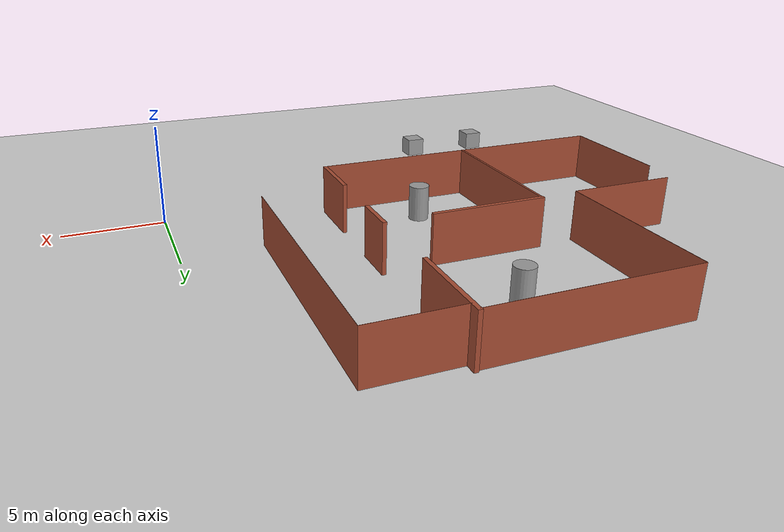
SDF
<sdf version="1.6">
 <world name="default">
  <model name="ground_plane">
   <static>1</static>
   <link name="link">
    <collision name="collision">
     <geometry><plane><normal>0 0 1</normal><size>100 100</size></plane></geometry>
     <surface><friction><ode><mu>100</mu><mu2>50</mu2></ode></friction></surface>
    </collision>
    <visual name="visual">
     <cast_shadows>0</cast_shadows>
     <geometry><plane><normal>0 0 1</normal><size>100 100</size></plane></geometry>
     <material>
      <script><uri>file://media/materials/scripts/gazebo.material</uri><name>Gazebo/Grey</name></script>
     </material>
    </visual>
   </link>
  </model>
  <model name="ANPL_Lab_Extended_1_0">
   <link name="Wall_165">
    <pose>-9.925 -4.975 0 0 -0 1.5708</pose>
    <visual name="Wall_165_Visual">
     <pose>0 0 1.25 0 -0 0</pose>
     <geometry><box><size>5.86 0.01 2.5</size></box></geometry>
     <material>
      <script><uri>file://media/materials/scripts/gazebo.material</uri><name>Gazebo/Bricks</name></script>
      <ambient>0.435294 0.796078 0.67451 1</ambient>
      <diffuse>1 1 1 1</diffuse>
      <specular>0.2 0.2 0.2 1</specular>
      <emissive>0 0 0 1</emissive>
     </material>
    </visual>
    <collision name="Wall_165_Collision">
     <pose>0 0 1.25 0 -0 0</pose>
     <geometry><box><size>5.86 0.01 2.5</size></box></geometry>
     <surface>
      <friction>
       <ode><mu>1</mu><mu2>1</mu2><fdir1>0 0 0</fdir1><slip1>0</slip1><slip2>0</slip2></ode>
       <torsional>
        <coefficient>1</coefficient>
        <patch_radius>0</patch_radius>
        <surface_radius>0</surface_radius>
        <use_patch_radius>1</use_patch_radius>
        <ode><slip>0</slip></ode>
       </torsional>
      </friction>
      <bounce><restitution_coefficient>0</restitution_coefficient><threshold>1e+06</threshold></bounce>
      <contact>
       <collide_without_contact>0</collide_without_contact>
       <collide_without_contact_bitmask>1</collide_without_contact_bitmask>
       <collide_bitmask>1</collide_bitmask>
       <ode>
        <soft_cfm>0</soft_cfm>
        <soft_erp>0.2</soft_erp>
        <kp>1e+13</kp>
        <kd>1</kd>
        <max_vel>0.01</max_vel>
        <min_depth>0</min_depth>
       </ode>
       <bullet>
        <split_impulse>1</split_impulse>
        <split_impulse_penetration_threshold>-0.01</split_impulse_penetration_threshold>
        <soft_cfm>0</soft_cfm>
        <soft_erp>0.2</soft_erp>
        <kp>1e+13</kp>
        <kd>1</kd>
       </bullet>
      </contact>
     </surface>
    </collision>
   </link>
   <link name="Wall_171">
    <pose>-6.8125 -0.3 0 0 -0 0</pose>
    <visual name="Wall_171_Visual">
     <pose>0 0 1.25 0 -0 0</pose>
     <geometry><box><size>5.435 0.01 2.5</size></box></geometry>
     <material>
      <script><uri>file://media/materials/scripts/gazebo.material</uri><name>Gazebo/Bricks</name></script>
      <ambient>0.435294 0.796078 0.67451 1</ambient>
      <diffuse>1 1 1 1</diffuse>
      <specular>0.2 0.2 0.2 1</specular>
      <emissive>0 0 0 1</emissive>
     </material>
    </visual>
    <collision name="Wall_171_Collision">
     <pose>0 0 1.25 0 -0 0</pose>
     <geometry><box><size>5.435 0.01 2.5</size></box></geometry>
     <surface>
      <friction>
       <ode><mu>1</mu><mu2>1</mu2><fdir1>0 0 0</fdir1><slip1>0</slip1><slip2>0</slip2></ode>
       <torsional>
        <coefficient>1</coefficient>
        <patch_radius>0</patch_radius>
        <surface_radius>0</surface_radius>
        <use_patch_radius>1</use_patch_radius>
        <ode><slip>0</slip></ode>
       </torsional>
      </friction>
      <bounce><restitution_coefficient>0</restitution_coefficient><threshold>1e+06</threshold></bounce>
      <contact>
       <collide_without_contact>0</collide_without_contact>
       <collide_without_contact_bitmask>1</collide_without_contact_bitmask>
       <collide_bitmask>1</collide_bitmask>
       <ode>
        <soft_cfm>0</soft_cfm>
        <soft_erp>0.2</soft_erp>
        <kp>1e+13</kp>
        <kd>1</kd>
        <max_vel>0.01</max_vel>
        <min_depth>0</min_depth>
       </ode>
       <bullet>
        <split_impulse>1</split_impulse>
        <split_impulse_penetration_threshold>-0.01</split_impulse_penetration_threshold>
        <soft_cfm>0</soft_cfm>
        <soft_erp>0.2</soft_erp>
        <kp>1e+13</kp>
        <kd>1</kd>
       </bullet>
      </contact>
     </surface>
    </collision>
   </link>
   <link name="Wall_173">
    <pose>-4.1 3.8 0 0 -0 1.5708</pose>
    <visual name="Wall_173_Visual">
     <pose>0 0 1.25 0 -0 0</pose>
     <geometry><box><size>8.21 0.01 2.5</size></box></geometry>
     <material>
      <script><uri>file://media/materials/scripts/gazebo.material</uri><name>Gazebo/Bricks</name></script>
      <ambient>0.435294 0.796078 0.67451 1</ambient>
      <diffuse>1 1 1 1</diffuse>
      <specular>0.2 0.2 0.2 1</specular>
      <emissive>0 0 0 1</emissive>
     </material>
    </visual>
    <collision name="Wall_173_Collision">
     <pose>0 0 1.25 0 -0 0</pose>
     <geometry><box><size>8.21 0.01 2.5</size></box></geometry>
     <surface>
      <friction>
       <ode><mu>1</mu><mu2>1</mu2><fdir1>0 0 0</fdir1><slip1>0</slip1><slip2>0</slip2></ode>
       <torsional>
        <coefficient>1</coefficient>
        <patch_radius>0</patch_radius>
        <surface_radius>0</surface_radius>
        <use_patch_radius>1</use_patch_radius>
        <ode><slip>0</slip></ode>
       </torsional>
      </friction>
      <bounce><restitution_coefficient>0</restitution_coefficient><threshold>1e+06</threshold></bounce>
      <contact>
       <collide_without_contact>0</collide_without_contact>
       <collide_without_contact_bitmask>1</collide_without_contact_bitmask>
       <collide_bitmask>1</collide_bitmask>
       <ode>
        <soft_cfm>0</soft_cfm>
        <soft_erp>0.2</soft_erp>
        <kp>1e+13</kp>
        <kd>1</kd>
        <max_vel>0.01</max_vel>
        <min_depth>0</min_depth>
       </ode>
       <bullet>
        <split_impulse>1</split_impulse>
        <split_impulse_penetration_threshold>-0.01</split_impulse_penetration_threshold>
        <soft_cfm>0</soft_cfm>
        <soft_erp>0.2</soft_erp>
        <kp>1e+13</kp>
        <kd>1</kd>
       </bullet>
      </contact>
     </surface>
    </collision>
   </link>
   <link name="Wall_175">
    <pose>0.7875 7.9 0 0 -0 0</pose>
    <visual name="Wall_175_Visual">
     <pose>0 0 1.25 0 -0 0</pose>
     <geometry><box><size>9.785 0.01 2.5</size></box></geometry>
     <material>
      <script><uri>file://media/materials/scripts/gazebo.material</uri><name>Gazebo/Bricks</name></script>
      <ambient>0.435294 0.796078 0.67451 1</ambient>
      <diffuse>1 1 1 1</diffuse>
      <specular>0.2 0.2 0.2 1</specular>
      <emissive>0 0 0 1</emissive>
     </material>
    </visual>
    <collision name="Wall_175_Collision">
     <pose>0 0 1.25 0 -0 0</pose>
     <geometry><box><size>9.785 0.01 2.5</size></box></geometry>
     <surface>
      <friction>
       <ode><mu>1</mu><mu2>1</mu2><fdir1>0 0 0</fdir1><slip1>0</slip1><slip2>0</slip2></ode>
       <torsional>
        <coefficient>1</coefficient>
        <patch_radius>0</patch_radius>
        <surface_radius>0</surface_radius>
        <use_patch_radius>1</use_patch_radius>
        <ode><slip>0</slip></ode>
       </torsional>
      </friction>
      <bounce><restitution_coefficient>0</restitution_coefficient><threshold>1e+06</threshold></bounce>
      <contact>
       <collide_without_contact>0</collide_without_contact>
       <collide_without_contact_bitmask>1</collide_without_contact_bitmask>
       <collide_bitmask>1</collide_bitmask>
       <ode>
        <soft_cfm>0</soft_cfm>
        <soft_erp>0.2</soft_erp>
        <kp>1e+13</kp>
        <kd>1</kd>
        <max_vel>0.01</max_vel>
        <min_depth>0</min_depth>
       </ode>
       <bullet>
        <split_impulse>1</split_impulse>
        <split_impulse_penetration_threshold>-0.01</split_impulse_penetration_threshold>
        <soft_cfm>0</soft_cfm>
        <soft_erp>0.2</soft_erp>
        <kp>1e+13</kp>
        <kd>1</kd>
       </bullet>
      </contact>
     </surface>
    </collision>
   </link>
   <link name="Wall_177">
    <pose>5.675 5.85 0 0 0 -1.5708</pose>
    <visual name="Wall_177_Visual">
     <pose>0 0 1.25 0 -0 0</pose>
     <geometry><box><size>4.3 0.2 2.5</size></box></geometry>
     <material>
      <script><uri>file://media/materials/scripts/gazebo.material</uri><name>Gazebo/Bricks</name></script>
      <ambient>0.435294 0.796078 0.67451 1</ambient>
      <diffuse>1 1 1 1</diffuse>
      <specular>0.2 0.2 0.2 1</specular>
      <emissive>0 0 0 1</emissive>
     </material>
    </visual>
    <collision name="Wall_177_Collision">
     <pose>0 0 1.25 0 -0 0</pose>
     <geometry><box><size>4.3 0.2 2.5</size></box></geometry>
     <surface>
      <friction>
       <ode><mu>1</mu><mu2>1</mu2><fdir1>0 0 0</fdir1><slip1>0</slip1><slip2>0</slip2></ode>
       <torsional>
        <coefficient>1</coefficient>
        <patch_radius>0</patch_radius>
        <surface_radius>0</surface_radius>
        <use_patch_radius>1</use_patch_radius>
        <ode><slip>0</slip></ode>
       </torsional>
      </friction>
      <bounce><restitution_coefficient>0</restitution_coefficient><threshold>1e+06</threshold></bounce>
      <contact>
       <collide_without_contact>0</collide_without_contact>
       <collide_without_contact_bitmask>1</collide_without_contact_bitmask>
       <collide_bitmask>1</collide_bitmask>
       <ode>
        <soft_cfm>0</soft_cfm>
        <soft_erp>0.2</soft_erp>
        <kp>1e+13</kp>
        <kd>1</kd>
        <max_vel>0.01</max_vel>
        <min_depth>0</min_depth>
       </ode>
       <bullet>
        <split_impulse>1</split_impulse>
        <split_impulse_penetration_threshold>-0.01</split_impulse_penetration_threshold>
        <soft_cfm>0</soft_cfm>
        <soft_erp>0.2</soft_erp>
        <kp>1e+13</kp>
        <kd>1</kd>
       </bullet>
      </contact>
     </surface>
    </collision>
   </link>
   <link name="Wall_179">
    <pose>7.775 7.5 0 0 -0 0</pose>
    <visual name="Wall_179_Visual">
     <pose>0 0 1.25 0 -0 0</pose>
     <geometry><box><size>4.21 0.01 2.5</size></box></geometry>
     <material>
      <script><uri>file://media/materials/scripts/gazebo.material</uri><name>Gazebo/Bricks</name></script>
      <ambient>0.435294 0.796078 0.67451 1</ambient>
      <diffuse>1 1 1 1</diffuse>
      <specular>0.2 0.2 0.2 1</specular>
      <emissive>0 0 0 1</emissive>
     </material>
    </visual>
    <collision name="Wall_179_Collision">
     <pose>0 0 1.25 0 -0 0</pose>
     <geometry><box><size>4.21 0.01 2.5</size></box></geometry>
     <surface>
      <friction>
       <ode><mu>1</mu><mu2>1</mu2><fdir1>0 0 0</fdir1><slip1>0</slip1><slip2>0</slip2></ode>
       <torsional>
        <coefficient>1</coefficient>
        <patch_radius>0</patch_radius>
        <surface_radius>0</surface_radius>
        <use_patch_radius>1</use_patch_radius>
        <ode><slip>0</slip></ode>
       </torsional>
      </friction>
      <bounce><restitution_coefficient>0</restitution_coefficient><threshold>1e+06</threshold></bounce>
      <contact>
       <collide_without_contact>0</collide_without_contact>
       <collide_without_contact_bitmask>1</collide_without_contact_bitmask>
       <collide_bitmask>1</collide_bitmask>
       <ode>
        <soft_cfm>0</soft_cfm>
        <soft_erp>0.2</soft_erp>
        <kp>1e+13</kp>
        <kd>1</kd>
        <max_vel>0.01</max_vel>
        <min_depth>0</min_depth>
       </ode>
       <bullet>
        <split_impulse>1</split_impulse>
        <split_impulse_penetration_threshold>-0.01</split_impulse_penetration_threshold>
        <soft_cfm>0</soft_cfm>
        <soft_erp>0.2</soft_erp>
        <kp>1e+13</kp>
        <kd>1</kd>
       </bullet>
      </contact>
     </surface>
    </collision>
   </link>
   <link name="Wall_181">
    <pose>9.875 1.285 0 0 0 -1.5708</pose>
    <visual name="Wall_181_Visual">
     <pose>0 0 1.25 0 -0 0</pose>
     <geometry><box><size>12.44 0.01 2.5</size></box></geometry>
     <material>
      <script><uri>file://media/materials/scripts/gazebo.material</uri><name>Gazebo/Bricks</name></script>
      <ambient>0.435294 0.796078 0.67451 1</ambient>
      <diffuse>1 1 1 1</diffuse>
      <specular>0.2 0.2 0.2 1</specular>
      <emissive>0 0 0 1</emissive>
     </material>
    </visual>
    <collision name="Wall_181_Collision">
     <pose>0 0 1.25 0 -0 0</pose>
     <geometry><box><size>12.44 0.01 2.5</size></box></geometry>
     <surface>
      <friction>
       <ode><mu>1</mu><mu2>1</mu2><fdir1>0 0 0</fdir1><slip1>0</slip1><slip2>0</slip2></ode>
       <torsional>
        <coefficient>1</coefficient>
        <patch_radius>0</patch_radius>
        <surface_radius>0</surface_radius>
        <use_patch_radius>1</use_patch_radius>
        <ode><slip>0</slip></ode>
       </torsional>
      </friction>
      <bounce><restitution_coefficient>0</restitution_coefficient><threshold>1e+06</threshold></bounce>
      <contact>
       <collide_without_contact>0</collide_without_contact>
       <collide_without_contact_bitmask>1</collide_without_contact_bitmask>
       <collide_bitmask>1</collide_bitmask>
       <ode>
        <soft_cfm>0</soft_cfm>
        <soft_erp>0.2</soft_erp>
        <kp>1e+13</kp>
        <kd>1</kd>
        <max_vel>0.01</max_vel>
        <min_depth>0</min_depth>
       </ode>
       <bullet>
        <split_impulse>1</split_impulse>
        <split_impulse_penetration_threshold>-0.01</split_impulse_penetration_threshold>
        <soft_cfm>0</soft_cfm>
        <soft_erp>0.2</soft_erp>
        <kp>1e+13</kp>
        <kd>1</kd>
       </bullet>
      </contact>
     </surface>
    </collision>
   </link>
   <link name="Wall_185">
    <pose>5.76868 -1.05 0 0 0 -1.5708</pose>
    <inertial>
     <mass>1</mass>
     <inertia><ixx>1</ixx><ixy>0</ixy><ixz>0</ixz><iyy>1</iyy><iyz>0</iyz><izz>1</izz></inertia>
    </inertial>
    <visual name="Wall_185_Visual">
     <pose>0 0 1.25 0 -0 0</pose>
     <geometry><box><size>2.1 0.2 2.5</size></box></geometry>
     <material>
      <script><uri>file://media/materials/scripts/gazebo.material</uri><name>Gazebo/Bricks</name></script>
      <ambient>0.435 0.796 0.675 1</ambient>
      <diffuse>1 1 1 1</diffuse>
      <specular>0.2 0.2 0.2 1</specular>
      <emissive>0 0 0 1</emissive>
      <shader type="vertex"><normal_map>__default__</normal_map></shader>
     </material>
    </visual>
    <collision name="Wall_185_Collision">
     <pose>0 0 1.25 0 -0 0</pose>
     <geometry><box><size>2.1 0.2 2.5</size></box></geometry>
     <surface>
      <friction>
       <ode><mu>1</mu><mu2>1</mu2><fdir1>0 0 0</fdir1><slip1>0</slip1><slip2>0</slip2></ode>
       <torsional>
        <coefficient>1</coefficient>
        <patch_radius>0</patch_radius>
        <surface_radius>0</surface_radius>
        <use_patch_radius>1</use_patch_radius>
        <ode><slip>0</slip></ode>
       </torsional>
      </friction>
      <bounce><restitution_coefficient>0</restitution_coefficient><threshold>1e+06</threshold></bounce>
      <contact>
       <collide_without_contact>0</collide_without_contact>
       <collide_without_contact_bitmask>1</collide_without_contact_bitmask>
       <collide_bitmask>1</collide_bitmask>
       <ode>
        <soft_cfm>0</soft_cfm>
        <soft_erp>0.2</soft_erp>
        <kp>1e+13</kp>
        <kd>1</kd>
        <max_vel>0.01</max_vel>
        <min_depth>0</min_depth>
       </ode>
       <bullet>
        <split_impulse>1</split_impulse>
        <split_impulse_penetration_threshold>-0.01</split_impulse_penetration_threshold>
        <soft_cfm>0</soft_cfm>
        <soft_erp>0.2</soft_erp>
        <kp>1e+13</kp>
        <kd>1</kd>
       </bullet>
      </contact>
     </surface>
    </collision>
   </link>
   <link name="Wall_203">
    <pose>5.76868 -6.42951 0 0 0 -1.5708</pose>
    <inertial>
     <inertia>
      <ixx>1.79769e+308</ixx>
      <ixy>0</ixy>
      <ixz>0</ixz>
      <iyy>1.79769e+308</iyy>
      <iyz>0</iyz>
      <izz>1.79769e+308</izz>
     </inertia>
     <mass>0</mass>
    </inertial>
    <visual name="Wall_203_Visual">
     <pose>0 0 1.25 0 -0 0</pose>
     <geometry><box><size>2.97075 0.2 2.5</size></box></geometry>
     <material>
      <script><uri>file://media/materials/scripts/gazebo.material</uri><name>Gazebo/Bricks</name></script>
      <ambient>0.435 0.796 0.675 1</ambient>
      <diffuse>1 1 1 1</diffuse>
      <specular>0.2 0.2 0.2 1</specular>
      <emissive>0 0 0 1</emissive>
      <shader type="vertex"><normal_map>__default__</normal_map></shader>
     </material>
    </visual>
    <collision name="Wall_203_Collision">
     <pose>0 0 1.25 0 -0 0</pose>
     <geometry><box><size>2.97075 0.2 2.5</size></box></geometry>
     <surface>
      <friction>
       <ode><mu>1</mu><mu2>1</mu2><fdir1>0 0 0</fdir1><slip1>0</slip1><slip2>0</slip2></ode>
       <torsional>
        <coefficient>1</coefficient>
        <patch_radius>0</patch_radius>
        <surface_radius>0</surface_radius>
        <use_patch_radius>1</use_patch_radius>
        <ode><slip>0</slip></ode>
       </torsional>
      </friction>
      <bounce><restitution_coefficient>0</restitution_coefficient><threshold>1e+06</threshold></bounce>
      <contact>
       <collide_without_contact>0</collide_without_contact>
       <collide_without_contact_bitmask>1</collide_without_contact_bitmask>
       <collide_bitmask>1</collide_bitmask>
       <ode>
        <soft_cfm>0</soft_cfm>
        <soft_erp>0.2</soft_erp>
        <kp>1e+13</kp>
        <kd>1</kd>
        <max_vel>0.01</max_vel>
        <min_depth>0</min_depth>
       </ode>
       <bullet>
        <split_impulse>1</split_impulse>
        <split_impulse_penetration_threshold>-0.01</split_impulse_penetration_threshold>
        <soft_cfm>0</soft_cfm>
        <soft_erp>0.2</soft_erp>
        <kp>1e+13</kp>
        <kd>1</kd>
       </bullet>
      </contact>
     </surface>
    </collision>
   </link>
   <link name="Wall_205">
    <pose>-2.125 -7.9 0 0 -0 3.14159</pose>
    <visual name="Wall_205_Visual">
     <pose>0 0 1.25 0 -0 0</pose>
     <geometry><box><size>15.61 0.01 2.5</size></box></geometry>
     <material>
      <script><uri>file://media/materials/scripts/gazebo.material</uri><name>Gazebo/Bricks</name></script>
      <ambient>0.435294 0.796078 0.67451 1</ambient>
      <diffuse>1 1 1 1</diffuse>
      <specular>0.2 0.2 0.2 1</specular>
      <emissive>0 0 0 1</emissive>
     </material>
    </visual>
    <collision name="Wall_205_Collision">
     <pose>0 0 1.25 0 -0 0</pose>
     <geometry><box><size>15.61 0.01 2.5</size></box></geometry>
     <surface>
      <friction>
       <ode><mu>1</mu><mu2>1</mu2><fdir1>0 0 0</fdir1><slip1>0</slip1><slip2>0</slip2></ode>
       <torsional>
        <coefficient>1</coefficient>
        <patch_radius>0</patch_radius>
        <surface_radius>0</surface_radius>
        <use_patch_radius>1</use_patch_radius>
        <ode><slip>0</slip></ode>
       </torsional>
      </friction>
      <bounce><restitution_coefficient>0</restitution_coefficient><threshold>1e+06</threshold></bounce>
      <contact>
       <collide_without_contact>0</collide_without_contact>
       <collide_without_contact_bitmask>1</collide_without_contact_bitmask>
       <collide_bitmask>1</collide_bitmask>
       <ode>
        <soft_cfm>0</soft_cfm>
        <soft_erp>0.2</soft_erp>
        <kp>1e+13</kp>
        <kd>1</kd>
        <max_vel>0.01</max_vel>
        <min_depth>0</min_depth>
       </ode>
       <bullet>
        <split_impulse>1</split_impulse>
        <split_impulse_penetration_threshold>-0.01</split_impulse_penetration_threshold>
        <soft_cfm>0</soft_cfm>
        <soft_erp>0.2</soft_erp>
        <kp>1e+13</kp>
        <kd>1</kd>
       </bullet>
      </contact>
     </surface>
    </collision>
   </link>
   <link name="Wall_207">
    <pose>-2.175 -4.05 0 0 -0 1.5708</pose>
    <visual name="Wall_207_Visual">
     <pose>0 0 1.25 0 -0 0</pose>
     <geometry><box><size>7.81 0.11 2.5</size></box></geometry>
     <material>
      <script><uri>file://media/materials/scripts/gazebo.material</uri><name>Gazebo/Bricks</name></script>
      <ambient>0.435294 0.796078 0.67451 1</ambient>
      <diffuse>1 1 1 1</diffuse>
      <specular>0.2 0.2 0.2 1</specular>
      <emissive>0 0 0 1</emissive>
     </material>
    </visual>
    <collision name="Wall_207_Collision">
     <pose>0 0 1.25 0 -0 0</pose>
     <geometry><box><size>7.81 0.11 2.5</size></box></geometry>
     <surface>
      <friction>
       <ode><mu>1</mu><mu2>1</mu2><fdir1>0 0 0</fdir1><slip1>0</slip1><slip2>0</slip2></ode>
       <torsional>
        <coefficient>1</coefficient>
        <patch_radius>0</patch_radius>
        <surface_radius>0</surface_radius>
        <use_patch_radius>1</use_patch_radius>
        <ode><slip>0</slip></ode>
       </torsional>
      </friction>
      <bounce><restitution_coefficient>0</restitution_coefficient><threshold>1e+06</threshold></bounce>
      <contact>
       <collide_without_contact>0</collide_without_contact>
       <collide_without_contact_bitmask>1</collide_without_contact_bitmask>
       <collide_bitmask>1</collide_bitmask>
       <ode>
        <soft_cfm>0</soft_cfm>
        <soft_erp>0.2</soft_erp>
        <kp>1e+13</kp>
        <kd>1</kd>
        <max_vel>0.01</max_vel>
        <min_depth>0</min_depth>
       </ode>
       <bullet>
        <split_impulse>1</split_impulse>
        <split_impulse_penetration_threshold>-0.01</split_impulse_penetration_threshold>
        <soft_cfm>0</soft_cfm>
        <soft_erp>0.2</soft_erp>
        <kp>1e+13</kp>
        <kd>1</kd>
       </bullet>
      </contact>
     </surface>
    </collision>
   </link>
   <link name="Wall_209">
    <pose>0.571 -0.2 0 0 -0 0</pose>
    <inertial>
     <mass>1</mass>
     <inertia><ixx>1</ixx><ixy>0</ixy><ixz>0</ixz><iyy>1</iyy><iyz>0</iyz><izz>1</izz></inertia>
    </inertial>
    <visual name="Wall_209_Visual">
     <pose>0 0 1.25 0 -0 0</pose>
     <geometry><box><size>5.692 0.2 2.5</size></box></geometry>
     <material>
      <script><uri>file://media/materials/scripts/gazebo.material</uri><name>Gazebo/Bricks</name></script>
      <ambient>0.435 0.796 0.675 1</ambient>
      <diffuse>1 1 1 1</diffuse>
      <specular>0.2 0.2 0.2 1</specular>
      <emissive>0 0 0 1</emissive>
      <shader type="vertex"><normal_map>__default__</normal_map></shader>
     </material>
    </visual>
    <collision name="Wall_209_Collision">
     <pose>0 0 1.25 0 -0 0</pose>
     <geometry><box><size>5.692 0.2 2.5</size></box></geometry>
     <surface>
      <friction>
       <ode><mu>1</mu><mu2>1</mu2><fdir1>0 0 0</fdir1><slip1>0</slip1><slip2>0</slip2></ode>
       <torsional>
        <coefficient>1</coefficient>
        <patch_radius>0</patch_radius>
        <surface_radius>0</surface_radius>
        <use_patch_radius>1</use_patch_radius>
        <ode><slip>0</slip></ode>
       </torsional>
      </friction>
      <bounce><restitution_coefficient>0</restitution_coefficient><threshold>1e+06</threshold></bounce>
      <contact>
       <collide_without_contact>0</collide_without_contact>
       <collide_without_contact_bitmask>1</collide_without_contact_bitmask>
       <collide_bitmask>1</collide_bitmask>
       <ode>
        <soft_cfm>0</soft_cfm>
        <soft_erp>0.2</soft_erp>
        <kp>1e+13</kp>
        <kd>1</kd>
        <max_vel>0.01</max_vel>
        <min_depth>0</min_depth>
       </ode>
       <bullet>
        <split_impulse>1</split_impulse>
        <split_impulse_penetration_threshold>-0.01</split_impulse_penetration_threshold>
        <soft_cfm>0</soft_cfm>
        <soft_erp>0.2</soft_erp>
        <kp>1e+13</kp>
        <kd>1</kd>
       </bullet>
      </contact>
     </surface>
    </collision>
   </link>
   <link name="link_0">
    <pose>1.54444 -5.4949 0.5 0 -0 0</pose>
    <inertial>
     <mass>1</mass>
     <inertia><ixx>0.145833</ixx><ixy>0</ixy><ixz>0</ixz><iyy>0.145833</iyy><iyz>0</iyz><izz>0.125</izz></inertia>
    </inertial>
    <visual name="visual">
     <geometry><cylinder><radius>0.5</radius><length>2.5</length></cylinder></geometry>
     <material>
      <lighting>1</lighting>
      <script><uri>file://media/materials/scripts/gazebo.material</uri><name>Gazebo/Grey</name></script>
      <ambient>0.3 0.3 0.3 1</ambient>
      <diffuse>0.7 0.7 0.7 1</diffuse>
      <specular>0.01 0.01 0.01 1</specular>
      <emissive>0 0 0 1</emissive>
      <shader type="vertex"><normal_map>__default__</normal_map></shader>
     </material>
    </visual>
    <collision name="collision">
     <geometry><cylinder><radius>0.5</radius><length>2.5</length></cylinder></geometry>
     <surface>
      <friction>
       <ode><mu>1</mu><mu2>1</mu2><fdir1>0 0 0</fdir1><slip1>0</slip1><slip2>0</slip2></ode>
       <torsional>
        <coefficient>1</coefficient>
        <patch_radius>0</patch_radius>
        <surface_radius>0</surface_radius>
        <use_patch_radius>1</use_patch_radius>
        <ode><slip>0</slip></ode>
       </torsional>
      </friction>
      <bounce><restitution_coefficient>0</restitution_coefficient><threshold>1e+06</threshold></bounce>
      <contact>
       <collide_without_contact>0</collide_without_contact>
       <collide_without_contact_bitmask>1</collide_without_contact_bitmask>
       <collide_bitmask>1</collide_bitmask>
       <ode>
        <soft_cfm>0</soft_cfm>
        <soft_erp>0.2</soft_erp>
        <kp>1e+13</kp>
        <kd>1</kd>
        <max_vel>0.01</max_vel>
        <min_depth>0</min_depth>
       </ode>
       <bullet>
        <split_impulse>1</split_impulse>
        <split_impulse_penetration_threshold>-0.01</split_impulse_penetration_threshold>
        <soft_cfm>0</soft_cfm>
        <soft_erp>0.2</soft_erp>
        <kp>1e+13</kp>
        <kd>1</kd>
       </bullet>
      </contact>
     </surface>
    </collision>
   </link>
   <link name="link_1">
    <pose>1.54444 4.32111 0.5 0 -0 0</pose>
    <inertial>
     <mass>1</mass>
     <inertia><ixx>0.145833</ixx><ixy>0</ixy><ixz>0</ixz><iyy>0.145833</iyy><iyz>0</iyz><izz>0.125</izz></inertia>
    </inertial>
    <visual name="visual">
     <geometry><cylinder><radius>0.5</radius><length>2.5</length></cylinder></geometry>
     <material>
      <lighting>1</lighting>
      <script><uri>file://media/materials/scripts/gazebo.material</uri><name>Gazebo/Grey</name></script>
      <ambient>0.3 0.3 0.3 1</ambient>
      <diffuse>0.7 0.7 0.7 1</diffuse>
      <specular>0.01 0.01 0.01 1</specular>
      <emissive>0 0 0 1</emissive>
      <shader type="vertex"><normal_map>__default__</normal_map></shader>
     </material>
    </visual>
    <collision name="collision">
     <geometry><cylinder><radius>0.5</radius><length>2.5</length></cylinder></geometry>
     <surface>
      <friction>
       <ode><mu>1</mu><mu2>1</mu2><fdir1>0 0 0</fdir1><slip1>0</slip1><slip2>0</slip2></ode>
       <torsional>
        <coefficient>1</coefficient>
        <patch_radius>0</patch_radius>
        <surface_radius>0</surface_radius>
        <use_patch_radius>1</use_patch_radius>
        <ode><slip>0</slip></ode>
       </torsional>
      </friction>
      <bounce><restitution_coefficient>0</restitution_coefficient><threshold>1e+06</threshold></bounce>
      <contact>
       <collide_without_contact>0</collide_without_contact>
       <collide_without_contact_bitmask>1</collide_without_contact_bitmask>
       <collide_bitmask>1</collide_bitmask>
       <ode>
        <soft_cfm>0</soft_cfm>
        <soft_erp>0.2</soft_erp>
        <kp>1e+13</kp>
        <kd>1</kd>
        <max_vel>0.01</max_vel>
        <min_depth>0</min_depth>
       </ode>
       <bullet>
        <split_impulse>1</split_impulse>
        <split_impulse_penetration_threshold>-0.01</split_impulse_penetration_threshold>
        <soft_cfm>0</soft_cfm>
        <soft_erp>0.2</soft_erp>
        <kp>1e+13</kp>
        <kd>1</kd>
       </bullet>
      </contact>
     </surface>
    </collision>
   </link>
   <static>1</static>
   <pose>-13.886 9.34363 0 0 -0 0</pose>
  </model>
  <model name="unit_box_0_0">
   <pose>-20.8331 -1.98878 0.5 0 -0 0</pose>
   <link name="link">
    <inertial>
     <mass>1</mass>
     <inertia>
      <ixx>0.166667</ixx>
      <ixy>0</ixy>
      <ixz>0</ixz>
      <iyy>0.166667</iyy>
      <iyz>0</iyz>
      <izz>0.166667</izz>
     </inertia>
    </inertial>
    <collision name="collision"><geometry><box><size>1 1 1</size></box></geometry></collision>
    <visual name="visual">
     <geometry><box><size>1 1 1</size></box></geometry>
     <material>
      <script><name>Gazebo/Grey</name><uri>file://media/materials/scripts/gazebo.material</uri></script>
     </material>
    </visual>
   </link>
  </model>
  <model name="unit_box_0_1">
   <pose>-16.6927 -2.04585 0.5 0 -0 0</pose>
   <link name="link">
    <inertial>
     <mass>1</mass>
     <inertia>
      <ixx>0.166667</ixx>
      <ixy>0</ixy>
      <ixz>0</ixz>
      <iyy>0.166667</iyy>
      <iyz>0</iyz>
      <izz>0.166667</izz>
     </inertia>
    </inertial>
    <collision name="collision"><geometry><box><size>1 1 1</size></box></geometry></collision>
    <visual name="visual">
     <geometry><box><size>1 1 1</size></box></geometry>
     <material>
      <script><name>Gazebo/Grey</name><uri>file://media/materials/scripts/gazebo.material</uri></script>
     </material>
    </visual>
   </link>
  </model>
  <model name="unit_box_0_2">
   <pose>-20.8331 -6.27341 0.5 0 -0 0</pose>
   <link name="link">
    <inertial>
     <mass>1</mass>
     <inertia>
      <ixx>0.166667</ixx>
      <ixy>0</ixy>
      <ixz>0</ixz>
      <iyy>0.166667</iyy>
      <iyz>0</iyz>
      <izz>0.166667</izz>
     </inertia>
    </inertial>
    <collision name="collision"><geometry><box><size>1 1 1</size></box></geometry></collision>
    <visual name="visual">
     <geometry><box><size>1 1 1</size></box></geometry>
     <material>
      <script><name>Gazebo/Grey</name><uri>file://media/materials/scripts/gazebo.material</uri></script>
     </material>
    </visual>
   </link>
  </model>
  <model name="unit_box_0_3">
   <pose>-16.6927 -6.27341 0.5 0 -0 0</pose>
   <link name="link">
    <inertial>
     <mass>1</mass>
     <inertia>
      <ixx>0.166667</ixx>
      <ixy>0</ixy>
      <ixz>0</ixz>
      <iyy>0.166667</iyy>
      <iyz>0</iyz>
      <izz>0.166667</izz>
     </inertia>
    </inertial>
    <collision name="collision"><geometry><box><size>1 1 1</size></box></geometry></collision>
    <visual name="visual">
     <geometry><box><size>1 1 1</size></box></geometry>
     <material>
      <script><name>Gazebo/Grey</name><uri>file://media/materials/scripts/gazebo.material</uri></script>
     </material>
    </visual>
   </link>
  </model>
 </world>
</sdf>
